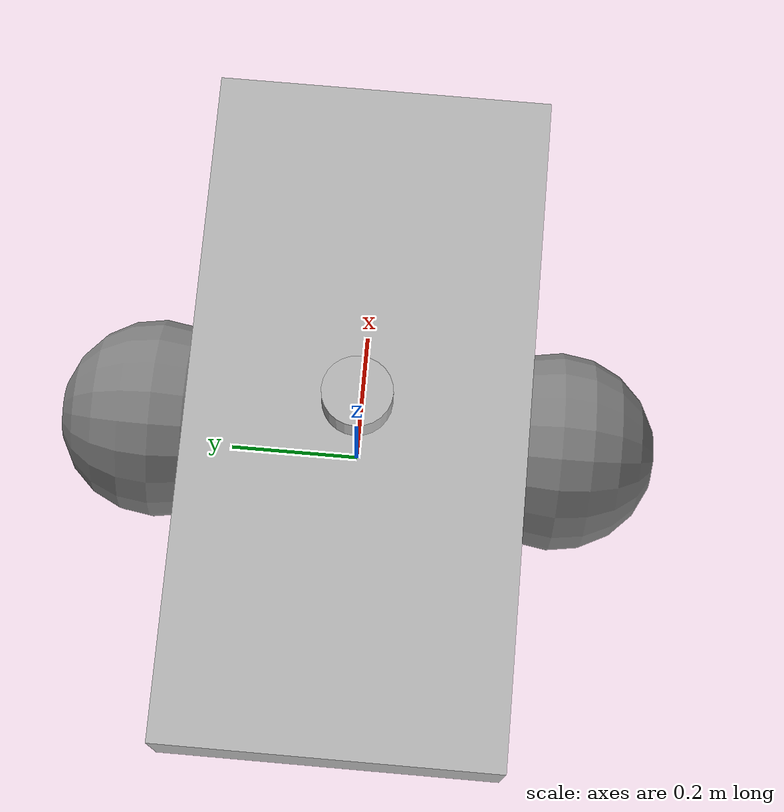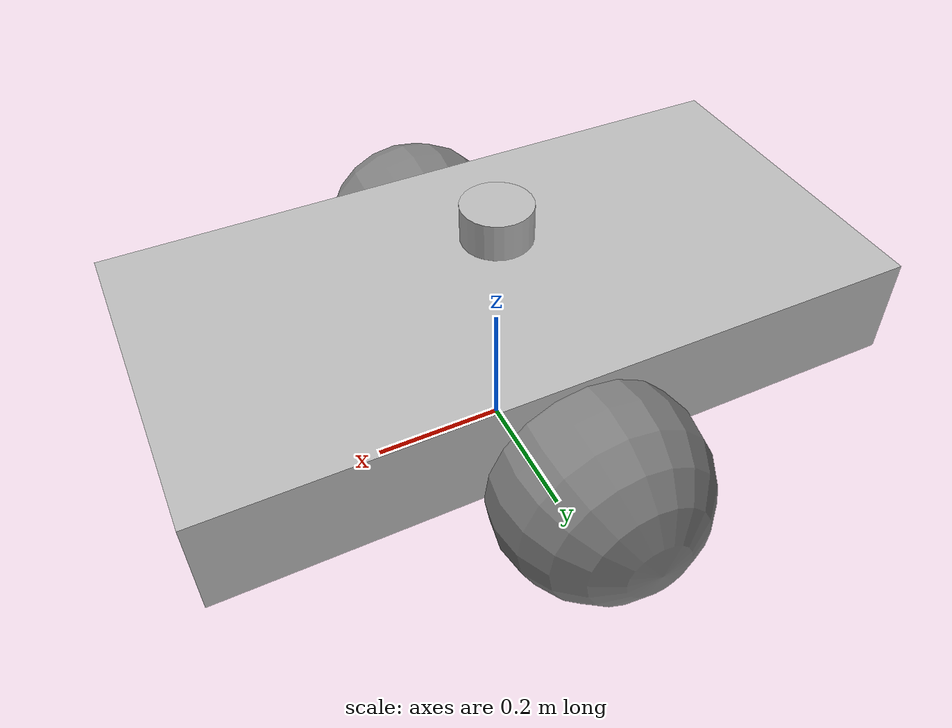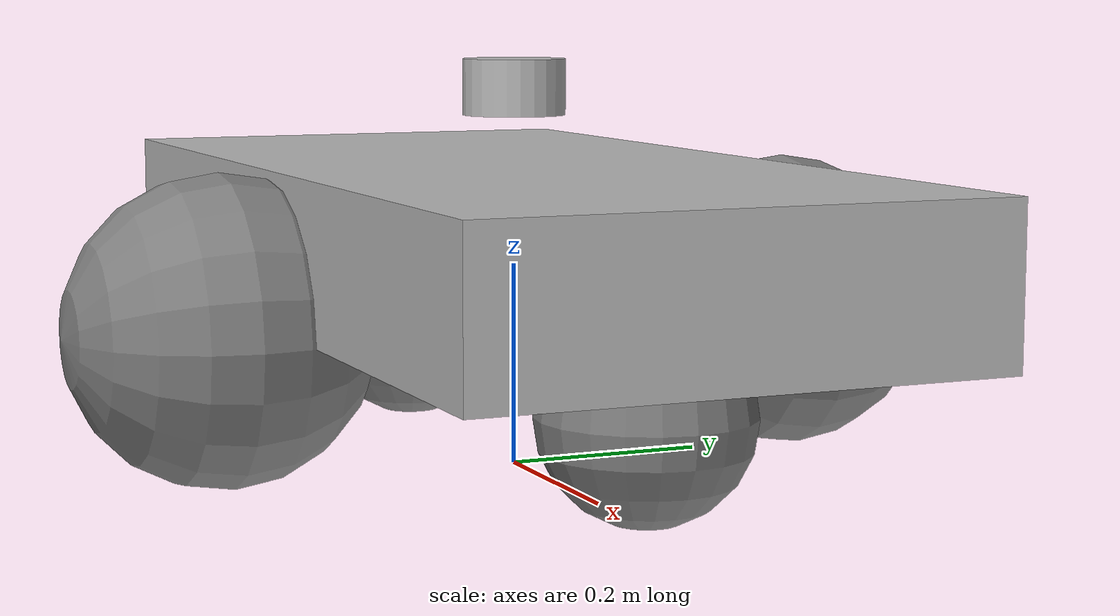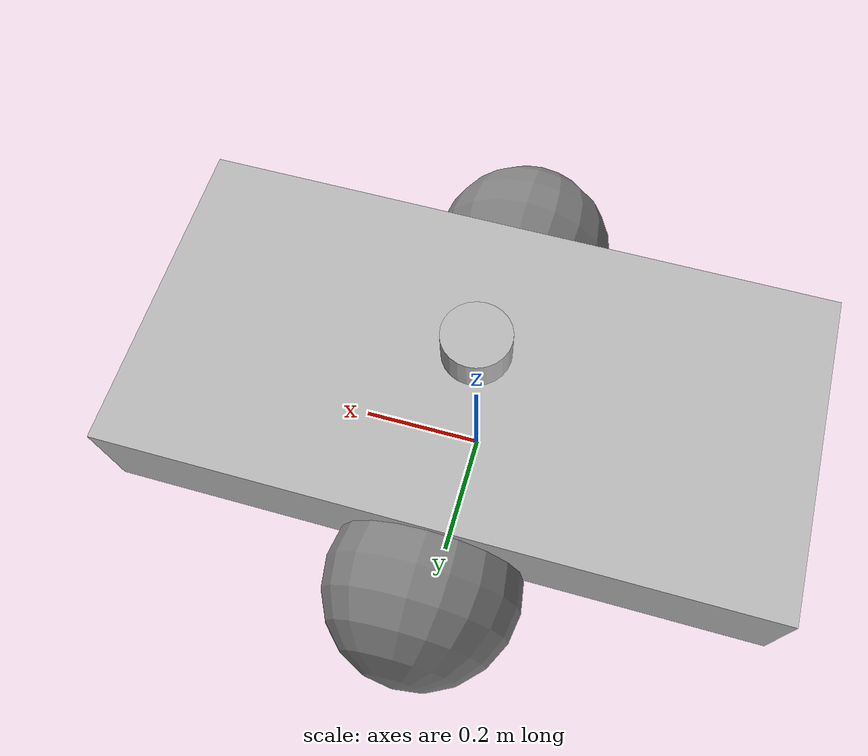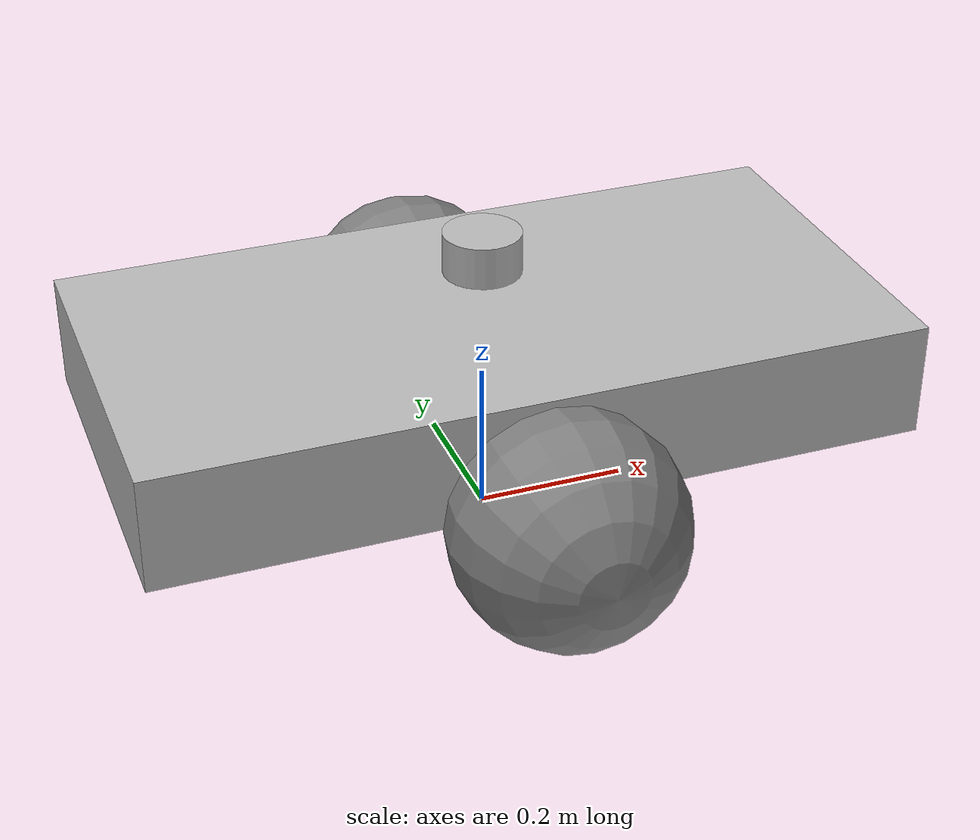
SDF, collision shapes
<?xml version="1.0" ?>
<sdf version="1.6">
  <model name='Dolly'>

    <link name="base_footprint"/>

    <pose>0 0 0.225 0 -0 0</pose>

    <link name='base_link'>
      <inertial>
        <mass>1.0</mass>
        <inertia>
          <ixx>0.0227</ixx>
          <ixy>0</ixy>
          <ixz>0</ixz>
          <iyy>0.0852</iyy>
          <iyz>0</iyz>
          <izz>0.1041</izz>
        </inertia>
      </inertial>
      <visual name='visual'>
        <geometry>
          <box>
            <size>1.0 0.5 0.15</size>
          </box>
        </geometry>
      </visual>
      <collision name="base_link_collision">
        <pose>0 0 0 0 0 0</pose>
        <geometry>
          <box>
            <size>1.0 0.5 0.15</size>
          </box>
        </geometry>
      </collision>
      </link>

    <link name="base_scan">
      <inertial>
        <pose>0.00 0 0.15 0 0 0</pose>
        <inertia>
          <ixx>0.001</ixx>
          <ixy>0.000</ixy>
          <ixz>0.000</ixz>
          <iyy>0.001</iyy>
          <iyz>0.000</iyz>
          <izz>0.001</izz>
        </inertia>
        <mass>0.125</mass>
      </inertial>
      <collision name="lidar_sensor_collision">
        <pose>0.0 0 0.15 0 0 0</pose>
        <geometry>
          <cylinder>
            <radius>0.0508</radius>
            <length>0.055</length>
          </cylinder>
        </geometry>
      </collision>

      <visual name="lidar_sensor_visual">
        <pose>0.0 0 0.15 0 0 0</pose>
        <geometry>
          <mesh>
            <uri>model://dolly/meshes/lds.dae</uri>
            <scale>0.001 0.001 0.001</scale>
          </mesh>
        </geometry>
      </visual>
      <sensor name="sensor_ray" type="ray">
        <pose>0.0 0 0.2 0 0 0</pose>
        <ray>
          <scan>
            <horizontal>
              <samples>360</samples>
              <resolution>1.0</resolution>
              <min_angle>0.0</min_angle>
              <max_angle>6.280000</max_angle>
            </horizontal>
          </scan>
          <range>
            <min>0.120000</min>
            <max>3.5</max>
          </range>
          <noise>
            <type>gaussian</type>
            <mean>0.0</mean>
            <stddev>0.01</stddev>
          </noise>
        </ray>
        <always_on>true</always_on>
        <visualize>false</visualize>
        <topic>scan</topic>

        <update_rate>100.0</update_rate>
        <plugin name="laser" filename="libgazebo_ros_ray_sensor.so">
          <ros>
            <remapping>~/out:=scan</remapping>
          </ros>
          <output_type>sensor_msgs/LaserScan</output_type>
          <frame_name>base_scan</frame_name>
        </plugin>
      </sensor>
    </link>

    <link name='caster'>
      <pose>-0.3 0 -0.125 0 0 0</pose>
      <inertial>
        <mass>0.0415553</mass>
        <inertia>
          <ixx>7.97741e-05</ixx>
          <ixy>0</ixy>
          <ixz>0</ixz>
          <iyy>7.97741e-05</iyy>
          <iyz>0</iyz>
          <izz>7.97741e-05</izz>
        </inertia>
      </inertial>
      <visual name='visual'>
        <geometry>
          <sphere>
            <radius>0.1</radius>
          </sphere>
        </geometry>
        <material>
          <diffuse>0.5 0.5 0.5 1</diffuse>
          <ambient>0 0 0 1</ambient>
          <specular>1 1 1 1</specular>
          <emissive>0 0 0 1</emissive>
        </material>
      </visual>
      <collision name='collision'>
        <geometry>
          <sphere>
            <radius>0.1</radius>
          </sphere>
        </geometry>
        <surface>
          <friction>
            <ode>
              <mu>1</mu>
              <mu2>1</mu2>
              <slip1>0</slip1>
              <slip2>0</slip2>
            </ode>
          </friction>
          <contact>
            <ode>
              <soft_cfm>0</soft_cfm>
              <soft_erp>0.2</soft_erp>
              <kp>1e+13</kp>
              <kd>1</kd>
              <max_vel>0.01</max_vel>
              <min_depth>0</min_depth>
            </ode>
          </contact>
        </surface>
      </collision>
    </link>

    <link name='caster_front'>
      <pose>0.3 0 -0.125 0 0 0</pose>
      <inertial>
        <mass>0.0415553</mass>
        <inertia>
          <ixx>7.97741e-05</ixx>
          <ixy>0</ixy>
          <ixz>0</ixz>
          <iyy>7.97741e-05</iyy>
          <iyz>0</iyz>
          <izz>7.97741e-05</izz>
        </inertia>
      </inertial>
      <visual name='visual'>
        <geometry>
          <sphere>
            <radius>0.1</radius>
          </sphere>
        </geometry>
        <material>
          <diffuse>0.5 0.5 0.5 1</diffuse>
          <ambient>0 0 0 1</ambient>
          <specular>1 1 1 1</specular>
          <emissive>0 0 0 1</emissive>
        </material>
      </visual>
      <collision name='collision'>
        <geometry>
          <sphere>
            <radius>0.1</radius>
          </sphere>
        </geometry>
        <surface>
          <friction>
            <ode>
              <mu>1</mu>
              <mu2>1</mu2>
              <slip1>0</slip1>
              <slip2>0</slip2>
            </ode>
          </friction>
          <contact>
            <ode>
              <soft_cfm>0</soft_cfm>
              <soft_erp>0.2</soft_erp>
              <kp>1e+13</kp>
              <kd>1</kd>
              <max_vel>0.01</max_vel>
              <min_depth>0</min_depth>
            </ode>
          </contact>
        </surface>
      </collision>
    </link>

    <link name='left_wheel'>
      <pose>0.0 0.3 -0.075 -1.5707 0 0</pose>
      <inertial>
        <mass>0.5</mass>
        <inertia>
          <ixx>0.0029</ixx>
          <ixy>0</ixy>
          <ixz>0</ixz>
          <iyy>0.0029</iyy>
          <iyz>0</iyz>
          <izz>0.0056</izz>
        </inertia>
      </inertial>
      <visual name='visual'>
        <geometry>
          <cylinder>
            <radius>0.15</radius>
            <length>0.05</length>
          </cylinder>
        </geometry>
        <material>
          <diffuse>0.5 0.5 0.5 1</diffuse>
          <ambient>0 0 0 1</ambient>
          <specular>1 1 1 1</specular>
          <emissive>0 0 0 1</emissive>
        </material>
      </visual>
      <collision name='collision'>
        <geometry>
          <sphere>
            <radius>0.15</radius>
          </sphere>
        </geometry>
        <surface>
          <friction>
            <ode>
              <mu>1</mu>
              <mu2>1</mu2>
              <slip1>0</slip1>
              <slip2>0</slip2>
            </ode>
          </friction>
          <contact>
            <ode>
              <soft_cfm>0</soft_cfm>
              <soft_erp>0.2</soft_erp>
              <kp>1e+13</kp>
              <kd>1</kd>
              <max_vel>0.01</max_vel>
              <min_depth>0.01</min_depth>
            </ode>
          </contact>
        </surface>
      </collision>
    </link>

    <link name='right_wheel'>
      <pose>0.0 -0.3 -0.075 -1.5707 0 0</pose>
      <inertial>
        <mass>0.5</mass>
        <inertia>
          <ixx>0.0029</ixx>
          <ixy>0</ixy>
          <ixz>0</ixz>
          <iyy>0.0029</iyy>
          <iyz>0</iyz>
          <izz>0.0056</izz>
        </inertia>
      </inertial>
      <visual name='visual'>
        <geometry>
          <cylinder>
            <radius>0.15</radius>
            <length>0.05</length>
          </cylinder>
        </geometry>
        <material>
          <diffuse>0.5 0.5 0.5 1</diffuse>
          <ambient>0 0 0 1</ambient>
          <specular>1 1 1 1</specular>
          <emissive>0 0 0 1</emissive>
        </material>
      </visual>
      <collision name='collision'>
        <geometry>
          <sphere>
            <radius>0.15</radius>
          </sphere>
        </geometry>
        <surface>
          <friction>
            <ode>
              <mu>1</mu>
              <mu2>1</mu2>
              <slip1>0</slip1>
              <slip2>0</slip2>
            </ode>
          </friction>
          <contact>
            <ode>
              <soft_cfm>0</soft_cfm>
              <soft_erp>0.2</soft_erp>
              <kp>1e+13</kp>
              <kd>1</kd>
              <max_vel>0.01</max_vel>
              <min_depth>0.01</min_depth>
            </ode>
          </contact>
        </surface>
      </collision>
    </link>

    <joint name="base_joint" type="fixed">
      <parent>base_footprint</parent>
      <child>base_link</child>
      <pose>0.0 0.0 0.010 0 0 0</pose>
    </joint>

    <joint name="lidar_joint" type="fixed">
      <parent>base_link</parent>
      <child>base_scan</child>
      <pose>-0.032 0 0.15 0 0 0</pose>
      <axis>
        <xyz>0 0 1</xyz>
      </axis>

    </joint>

    <joint name='left_wheel_joint' type='revolute'>
      <parent>base_link</parent>
      <child>left_wheel</child>
      <axis>
        <xyz>0 0 1</xyz>
        <limit>
          <lower>-1.79769e+308</lower>
          <upper>1.79769e+308</upper>
        </limit>
      </axis>
    </joint>

    <joint name='right_wheel_joint' type='revolute'>
      <parent>base_link</parent>
      <child>right_wheel</child>
      <axis>
        <xyz>0 0 1</xyz>
        <limit>
          <lower>-1.79769e+308</lower>
          <upper>1.79769e+308</upper>
        </limit>
      </axis>
    </joint>

    <joint name='caster_wheel' type='ball'>
      <parent>base_link</parent>
      <child>caster</child>
    </joint>

    <joint name='caster_front_wheel' type='ball'>
      <parent>base_link</parent>
      <child>caster_front</child>
    </joint>

    <plugin name='diff_drive' filename='libgazebo_ros_diff_drive.so'>

      <!-- wheels -->
      <left_joint>left_wheel_joint</left_joint>
      <right_joint>right_wheel_joint</right_joint>

      <!-- kinematics -->
      <wheel_separation>1.25</wheel_separation>
      <wheel_diameter>0.3</wheel_diameter>

      <!-- limits -->
      <max_wheel_torque>20</max_wheel_torque>
      <max_wheel_acceleration>1.0</max_wheel_acceleration>

      <!-- output -->
      <publish_odom>true</publish_odom>
      <publish_odom_tf>true</publish_odom_tf>
      <publish_wheel_tf>true</publish_wheel_tf>

      <odometry_frame>odom</odometry_frame>
      <robot_base_frame>base_footprint</robot_base_frame>
      <command_topic>cmd_vel</command_topic>

    </plugin>

    <plugin name="dolly_joint_state" filename="libgazebo_ros_joint_state_publisher.so">
      <ros>
        <remapping>~/out:=joint_states</remapping>
      </ros>
      <update_rate>30</update_rate>
      <joint_name>left_wheel_joint</joint_name>
      <joint_name>right_wheel_joint</joint_name>
    </plugin>

  </model>
</sdf>
